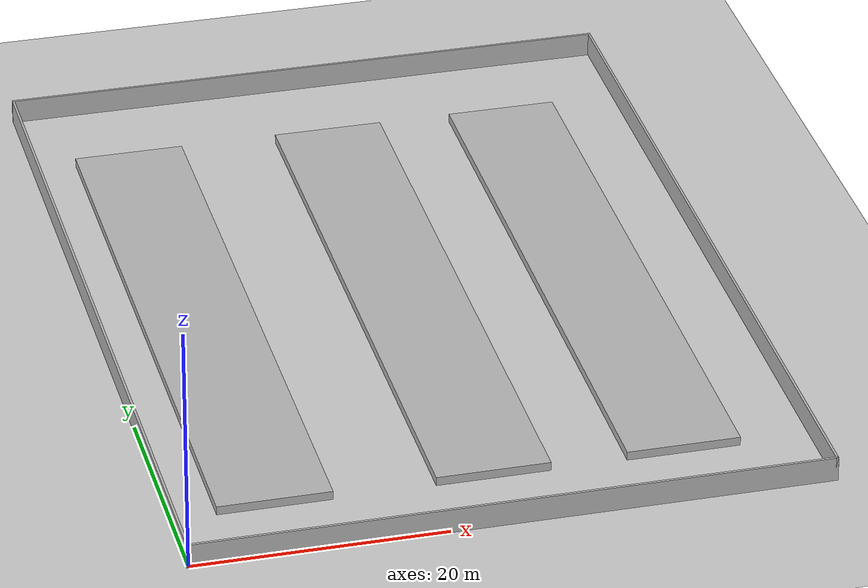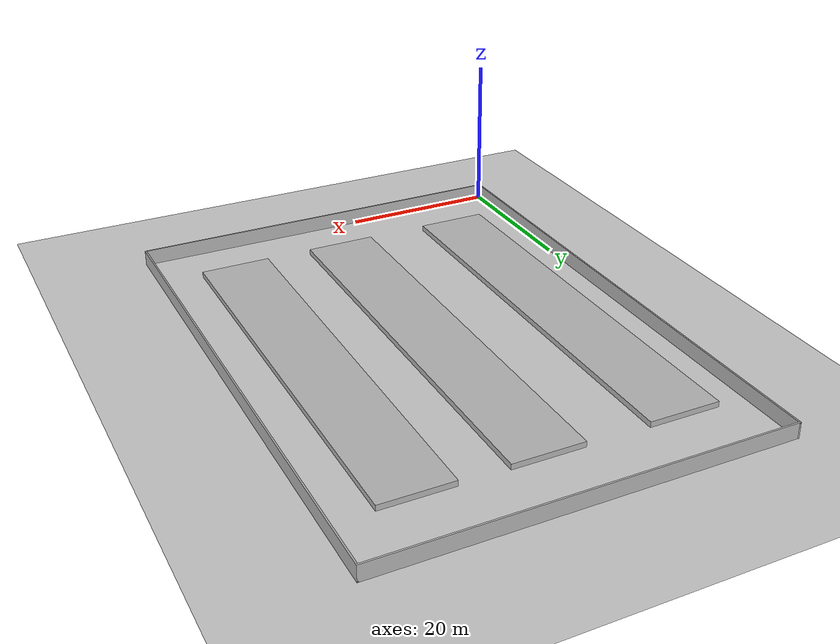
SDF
<?xml version="1.0" ?>
<sdf version="1.6">
  <world name="factory_50x70_3blocks">
    <include><uri>model://sun</uri></include>
    <include><uri>model://ground_plane</uri></include>

    <!-- Boundary walls: 50m x 70m -->
    <!-- thickness=0.2m, height=2.0m -->
    <model name="wall_bottom">
      <static>true</static>
      <pose>25 -0.1 1.0 0 0 0</pose>
      <link name="link">
        <collision name="collision"><geometry><box><size>50.4 0.2 2.0</size></box></geometry></collision>
        <visual name="visual"><geometry><box><size>50.4 0.2 2.0</size></box></geometry></visual>
      </link>
    </model>

    <model name="wall_top">
      <static>true</static>
      <pose>25 70.1 1.0 0 0 0</pose>
      <link name="link">
        <collision name="collision"><geometry><box><size>50.4 0.2 2.0</size></box></geometry></collision>
        <visual name="visual"><geometry><box><size>50.4 0.2 2.0</size></box></geometry></visual>
      </link>
    </model>

    <model name="wall_left">
      <static>true</static>
      <pose>-0.1 35 1.0 0 0 0</pose>
      <link name="link">
        <collision name="collision"><geometry><box><size>0.2 70.4 2.0</size></box></geometry></collision>
        <visual name="visual"><geometry><box><size>0.2 70.4 2.0</size></box></geometry></visual>
      </link>
    </model>

    <model name="wall_right">
      <static>true</static>
      <pose>50.1 35 1.0 0 0 0</pose>
      <link name="link">
        <collision name="collision"><geometry><box><size>0.2 70.4 2.0</size></box></geometry></collision>
        <visual name="visual"><geometry><box><size>0.2 70.4 2.0</size></box></geometry></visual>
      </link>
    </model>

    <!-- Obstacles -->
    <model name="obs_left_10x60">
      <static>true</static>
      <pose>8 34 0.25 0 0 0</pose>
      <link name="link">
        <collision name="collision"><geometry><box><size>9 55 0.75</size></box></geometry></collision>
        <visual name="visual"><geometry><box><size>9 55 0.75</size></box></geometry></visual>
      </link>
    </model>

    <model name="obs_mid_20x60">
      <static>true</static>
      <pose>25 34 0.25 0 0 0</pose>
      <link name="link">
        <collision name="collision"><geometry><box><size>9 55 0.75</size></box></geometry></collision>
        <visual name="visual"><geometry><box><size>9 55 0.75</size></box></geometry></visual>
      </link>
    </model>

    <model name="obs_right_10x60">
      <static>true</static>
      <pose>40 34 0.25 0 0 0</pose>
      <link name="link">
        <collision name="collision"><geometry><box><size>9 55 0.75</size></box></geometry></collision>
        <visual name="visual"><geometry><box><size>9 55 0.75</size></box></geometry></visual>
      </link>
    </model>

  </world>
</sdf>
